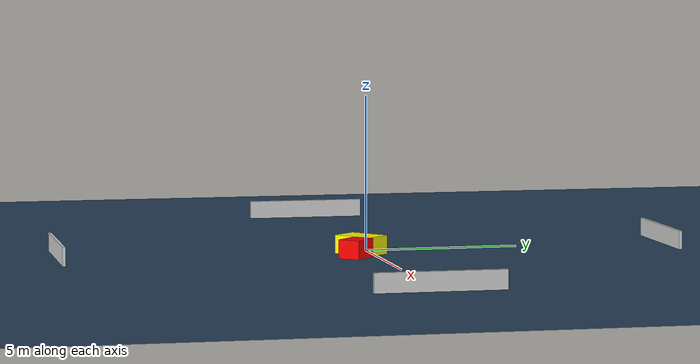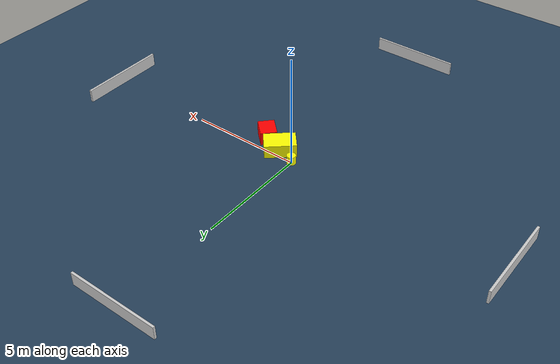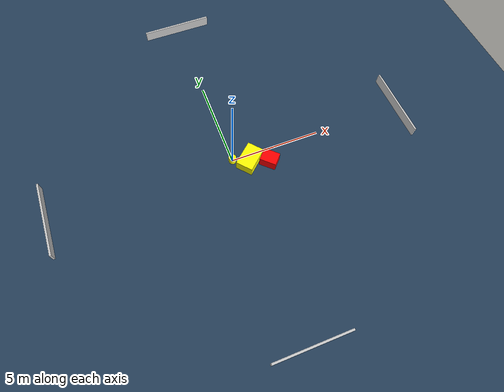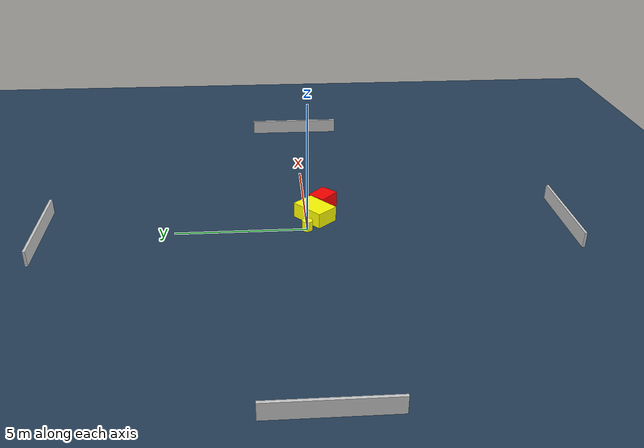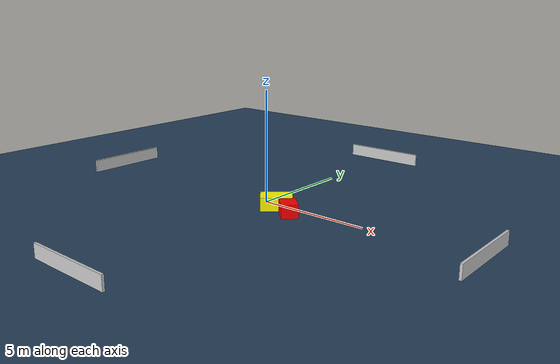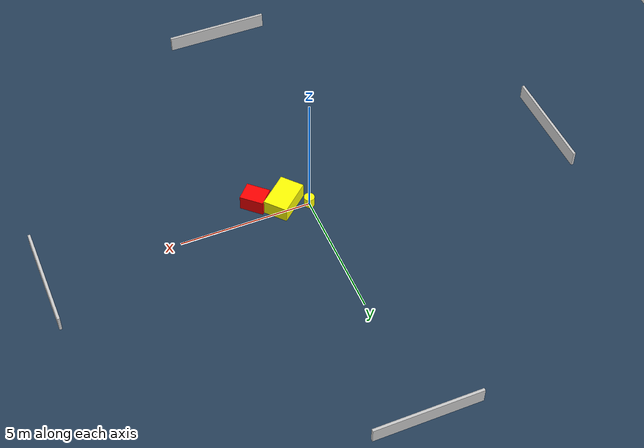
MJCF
<?xml version="1.0" ?>
<mujoco model="generated_environment">
  <option timestep="0.01" integrator="RK4" cone="elliptic"/>
  <default>
    <geom density="1"/>
  </default>
  <asset>
    <texture builtin="gradient" height="3072" name="skybox" rgb1="0.3 0.5 0.7" rgb2="0 0 0" type="skybox" width="512"/>
    <texture builtin="checker" height="300" name="groundplane" rgb1="0.2 0.3 0.4" rgb2="0.1 0.2 0.3" type="2d" width="300"/>
    <material name="groundplane" reflectance="0.2" texrepeat="5 5" texture="groundplane"/>
  </asset>
  <worldbody>
    <light dir="0 0 -1" directional="true" pos="0 0 1.5"/>
    <geom condim="3" friction="0.5 0.005 0.001" material="groundplane" name="floor" pos="0 0 0" size="0 0 0.05" type="plane"/>
    <body name="walls">
      <geom name="wall_1" condim="4" pos="-10.0 0.0 0.3" rgba="0.800000011920929 0.800000011920929 0.800000011920929 1.0" size="0.05 2.0 0.3" type="box"/>
      <geom name="wall_2" condim="4" pos="10.0 0.0 0.3" rgba="0.800000011920929 0.800000011920929 0.800000011920929 1.0" size="0.05 2.0 0.3" type="box"/>
      <geom name="wall_3" condim="4" pos="0.0 -10.0 0.3" rgba="0.800000011920929 0.800000011920929 0.800000011920929 1.0" size="2.0 0.05 0.3" type="box"/>
      <geom name="wall_4" condim="4" pos="0.0 10.0 0.3" rgba="0.800000011920929 0.800000011920929 0.800000011920929 1.0" size="2.0 0.05 0.3" type="box"/>
    </body>
    <body name="robot">
      <joint name="joint_x" type="slide" pos="0 0 0" axis="1 0 0"/>
      <joint name="joint_y" type="slide" pos="0 0 0" axis="0 1 0"/>
      <geom name="robot" type="cylinder" pos="0.0 0.0 0.2" size="0.2 0.2 0.0" mass="5.0" friction="1.0 0.005 0.0001" condim="4" rgba="1.0 1.0 0.0 1.0"/>
    </body>
    <body name="obstacle_1_movable">
      <geom name="obstacle_1_movable" condim="4" pos="0.8687367144454066 -0.3510675156168651 0.3" euler="0 0 41.05084000163419" friction="0.0 0.005 0.001" rgba="1.0 1.0 0.0 1.0" size="0.6935317288014156 0.4626148944216149 0.3" type="box" mass="0.1"/>
      <joint type="free"/>
    </body>
    <body name="obstacle_2_static">
      <geom name="obstacle_2_static" condim="4" pos="1.853246544342798 -0.7424283254475434 0.3" euler="0 0 226.89067188149423" friction="0.0 0.005 0.001" rgba="1.0 0.0 0.0 1.0" size="0.36214682508846396 0.4505586422487962 0.3" type="box"/>
    </body>
  </worldbody>
  <actuator>
    <motor name="actuator_x" joint="joint_x" gear="1" ctrlrange="-1 1"/>
    <motor name="actuator_y" joint="joint_y" gear="1" ctrlrange="-1 1"/>
  </actuator>
</mujoco>
